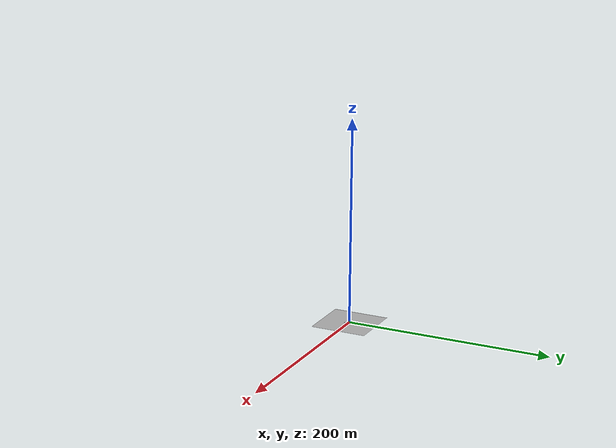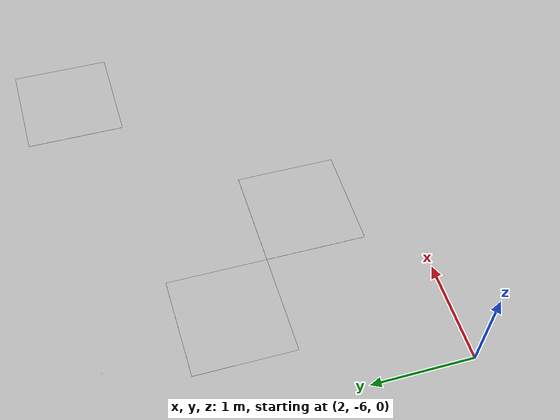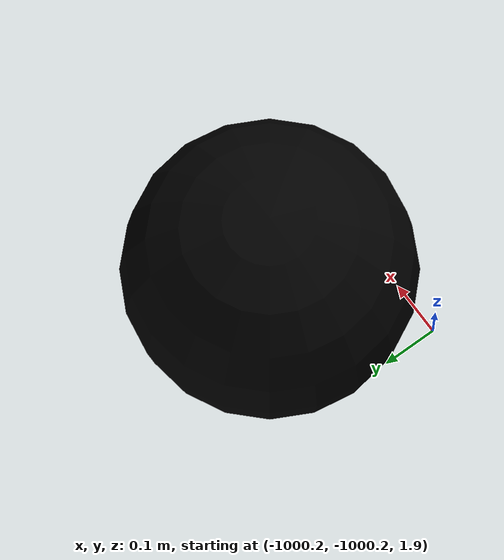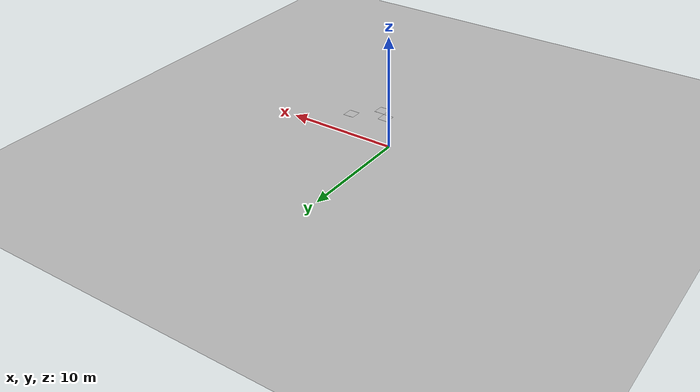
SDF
<?xml version="1.0" encoding="UTF-8"?>
<sdf version="1.9">
  <world name="cbr_edra">
    <!-- Plugins compatíveis com Gz Garden -->
    <plugin name="gz::sim::systems::Physics" filename="gz-sim-physics-system"/>
    <plugin name="gz::sim::systems::UserCommands" filename="gz-sim-user-commands-system"/>
    <plugin name="gz::sim::systems::SceneBroadcaster" filename="gz-sim-scene-broadcaster-system"/>
    <plugin name="gz::sim::systems::Contact" filename="gz-sim-contact-system"/>
    <plugin name="gz::sim::systems::Imu" filename="gz-sim-imu-system"/>
    <plugin name="gz::sim::systems::AirPressure" filename="gz-sim-air-pressure-system"/>
    <plugin name="gz::sim::systems::ApplyLinkWrench" filename="gz-sim-apply-link-wrench-system"/>
    <plugin name="gz::sim::systems::NavSat" filename="gz-sim-navsat-system"/>
    <plugin name="gz::sim::systems::Sensors" filename="gz-sim-sensors-system">
      <render_engine>ogre2</render_engine>
    </plugin>

    <!-- Coordenadas esféricas -->
    <spherical_coordinates>
      <surface_model>EARTH_WGS84</surface_model>
      <latitude_deg>37.411802</latitude_deg>
      <longitude_deg>-121.995739</longitude_deg>
      <elevation>0.0</elevation>
      <heading_deg>0</heading_deg>
    </spherical_coordinates>

    <!-- Configurações de física -->

    <physics type="ode">
      <max_step_size>0.004</max_step_size>
      <real_time_factor>1.0</real_time_factor>
      <real_time_update_rate>250</real_time_update_rate>
    </physics>

    <!-- Configurações da cena -->
    <scene>
      <shadows>false</shadows>
      <ambient>0.4 0.4 0.4 1</ambient>
      <background>0.7 0.7 0.7 1</background>
    </scene>

    <!-- Luz do sol -->
    <light type="directional" name="sun">
      <pose>250 250 600 0 0 0</pose>
      <diffuse>0.8 0.8 0.8 1</diffuse>
      <specular>0.2 0.2 0.2 1</specular>
      <attenuation>
        <range>1000</range>
        <constant>0.9</constant>
        <linear>0.01</linear>
        <quadratic>0.001</quadratic>
      </attenuation>
      <direction>0 0 -1</direction>
    </light>

    <!-- Plano de chão -->
    <model name="ground_plane">
      <static>true</static>
      <link name="link">
        <collision name="collision">
          <geometry>
            <plane>
              <normal>0 0 1</normal>
              <size>250 250</size>
            </plane>
          </geometry>
          <surface>
            <friction>
              <ode>
                <mu>1</mu>
                <mu2>1</mu2>
              </ode>
            </friction>
          </surface>
        </collision>
        <visual name="grass">
          <geometry>
            <mesh>
              <uri>file://grass_plane/meshes/grass_plane.dae</uri>
            </mesh>
          </geometry>
        </visual>
      </link>
    </model>

    <include>
      <uri>model://land_base</uri>
      <pose>4 5 0 0 0 0</pose>
      <name>land_base_1</name>
    </include>
    <include>
      <uri>model://land_base</uri>
      <pose>6 7 0 0 0 0</pose>
      <name>land_base_2</name>
    </include>
    <include>
      <uri>model://land_base</uri>
      <pose>3 6 0 0 0 0</pose>
      <name>land_base_3</name>
    </include>

    <!-- Modelo do vazio -->
    <model name="the_void">
      <static>true</static>
      <link name="link">
        <pose>0 0 0.1 0 0 0</pose>
        <visual name="the_void">
          <pose>0 0 2 0 0 0</pose>
          <geometry>
            <sphere>
              <radius>0.25</radius>
            </sphere>
          </geometry>
          <material>
            <ambient>0 0 0 1</ambient>
            <diffuse>0 0 0 1</diffuse>
            <specular>0 0 0 1</specular>
          </material>
        </visual>
      </link>
      <pose>-1000 -1000 0 0 0 0</pose>
    </model>

    <!-- Configurações da GUI -->
    <gui fullscreen="false">
      <plugin filename="MinimalScene" name="3D View">
        <gz-gui>
          <title>3D View</title>
          <property type="bool" key="showTitleBar">false</property>
          <property type="string" key="state">docked</property>
        </gz-gui>
        <engine>ogre2</engine>
        <scene>scene</scene>
        <ambient_light>0.4 0.4 0.4</ambient_light>
        <background_color>0.8 0.8 0.8</background_color>
        <camera_pose>-6 0 6 0 0.5 0</camera_pose>
        <camera_clip>
          <near>0.25</near>
          <far>25000</far>
        </camera_clip>
      </plugin>
      <plugin filename="EntityContextMenuPlugin" name="Entity context menu">
        <gz-gui>
          <property key="state" type="string">floating</property>
          <property key="width" type="double">5</property>
          <property key="height" type="double">5</property>
          <property key="showTitleBar" type="bool">false</property>
        </gz-gui>
      </plugin>
      <plugin filename="GzSceneManager" name="Scene Manager">
        <gz-gui>
          <property key="resizable" type="bool">false</property>
          <property key="width" type="double">5</property>
          <property key="height" type="double">5</property>
          <property key="state" type="string">floating</property>
          <property key="showTitleBar" type="bool">false</property>
        </gz-gui>
      </plugin>
      <plugin filename="InteractiveViewControl" name="Interactive view control">
        <gz-gui>
          <property key="resizable" type="bool">false</property>
          <property key="width" type="double">5</property>
          <property key="height" type="double">5</property>
          <property key="state" type="string">floating</property>
          <property key="showTitleBar" type="bool">false</property>
        </gz-gui>
      </plugin>
      <plugin filename="CameraTracking" name="Camera Tracking">
        <gz-gui>
          <property key="resizable" type="bool">false</property>
          <property key="width" type="double">5</property>
          <property key="height" type="double">5</property>
          <property key="state" type="string">floating</property>
          <property key="showTitleBar" type="bool">false</property>
        </gz-gui>
      </plugin>
      <plugin filename="MarkerManager" name="Marker manager">
        <gz-gui>
          <property key="resizable" type="bool">false</property>
          <property key="width" type="double">5</property>
          <property key="height" type="double">5</property>
          <property key="state" type="string">floating</property>
          <property key="showTitleBar" type="bool">false</property>
        </gz-gui>
      </plugin>
      <plugin filename="SelectEntities" name="Select Entities">
        <gz-gui>
          <anchors target="Select entities">
            <line own="right" target="right"/>
            <line own="top" target="top"/>
          </anchors>
          <property key="resizable" type="bool">false</property>
          <property key="width" type="double">5</property>
          <property key="height" type="double">5</property>
          <property key="state" type="string">floating</property>
          <property key="showTitleBar" type="bool">false</property>
        </gz-gui>
      </plugin>
      <plugin filename="VisualizationCapabilities" name="Visualization Capabilities">
        <gz-gui>
          <property key="resizable" type="bool">false</property>
          <property key="width" type="double">5</property>
          <property key="height" type="double">5</property>
          <property key="state" type="string">floating</property>
          <property key="showTitleBar" type="bool">false</property>
        </gz-gui>
      </plugin>
      <plugin filename="Spawn" name="Spawn Entities">
        <gz-gui>
          <anchors target="Select entities">
            <line own="right" target="right"/>
            <line own="top" target="top"/>
          </anchors>
          <property key="resizable" type="bool">false</property>
          <property key="width" type="double">5</property>
          <property key="height" type="double">5</property>
          <property key="state" type="string">floating</property>
          <property key="showTitleBar" type="bool">false</property>
        </gz-gui>
      </plugin>
      <plugin name="World control" filename="WorldControl">
        <gz-gui>
          <title>World control</title>
          <property type="bool" key="showTitleBar">0</property>
          <property type="bool" key="resizable">0</property>
          <property type="double" key="height">72</property>
          <property type="double" key="width">121</property>
          <property type="double" key="z">1</property>
          <property type="string" key="state">floating</property>
          <anchors target="3D View">
            <line own="left" target="left"/>
            <line own="bottom" target="bottom"/>
          </anchors>
        </gz-gui>
        <play_pause>1</play_pause>
        <step>1</step>
        <start_paused>1</start_paused>
      </plugin>
      <plugin name="World stats" filename="WorldStats">
        <gz-gui>
          <title>World stats</title>
          <property type="bool" key="showTitleBar">0</property>
          <property type="bool" key="resizable">0</property>
          <property type="double" key="height">110</property>
          <property type="double" key="width">290</property>
          <property type="double" key="z">1</property>
          <property type="string" key="state">floating</property>
          <anchors target="3D View">
            <line own="right" target="right"/>
            <line own="bottom" target="bottom"/>
          </anchors>
        </gz-gui>
        <sim_time>1</sim_time>
        <real_time>1</real_time>
        <real_time_factor>1</real_time_factor>
        <iterations>1</iterations>
      </plugin>
      <plugin name="Entity tree" filename="EntityTree"/>
    </gui>

    <gravity>0 0 -9.8</gravity>
    <magnetic_field>6e-06 2.3e-05 -4.2e-05</magnetic_field>
    <atmosphere type="adiabatic"/>
  </world>
</sdf>

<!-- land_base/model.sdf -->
<sdf version='1.9'>
  <model name='land_base'>
    <link name='link_E'>
      <inertial>
        <mass>1</mass>
        <inertia>
          <ixx>0.1</ixx>
          <ixy>0.0</ixy>
          <ixz>0.0</ixz>
          <iyy>0.1</iyy>
          <iyz>0.0</iyz>
          <izz>0.1</izz>
        </inertia>
      </inertial>
      <pose>0 0 0 0 0 0</pose>
      <visual name='visual'>
        <pose>0 -10 0 0 0 0</pose> # 0 -10 0 0 0 0
        <geometry>
          <mesh>
            <uri>model://land_base/meshes/land_base_1.obj</uri>
            <scale>1 1 1</scale>
          </mesh>
        </geometry>
        <transparency>0</transparency>
        <cast_shadows>true</cast_shadows>
      </visual>
      <collision name='collision'>
        <laser_retro>0</laser_retro>
        <max_contacts>100</max_contacts>
        <pose>0 -10 0 0 0 0</pose> # 0 -10 0 0 0 0
        <geometry>
          <mesh>
            <uri>model://land_base/meshes/land_base_1.obj</uri>
            <scale>1 1 1</scale>
          </mesh>
        </geometry>
        <surface>
          <friction>
            <ode>
              <mu>100</mu>
              <mu2>100</mu2>
              <fdir1>0 0 0</fdir1>
              <slip1>0</slip1>
              <slip2>0</slip2>
            </ode>
            <torsional>
              <coefficient>1</coefficient>
              <patch_radius>1</patch_radius>
              <surface_radius>1</surface_radius>
              <use_patch_radius>true</use_patch_radius>
              <ode>
                <slip>0</slip>
              </ode>
            </torsional>
          </friction>
          <bounce>
            <restitution_coefficient>1</restitution_coefficient>
            <threshold>1e+06</threshold>
          </bounce>
          <contact>
            <collide_without_contact>false</collide_without_contact>
            <collide_without_contact_bitmask>1</collide_without_contact_bitmask>
            <collide_bitmask>1</collide_bitmask>
            <ode>
              <soft_cfm>0</soft_cfm>
              <soft_erp>0.2</soft_erp>
              <kp>1e+13</kp>
              <kd>1</kd>
              <max_vel>0.01</max_vel>
              <min_depth>0</min_depth>
            </ode>
            <bullet>
              <split_impulse>true</split_impulse>
              <split_impulse_penetration_threshold>-0.01</split_impulse_penetration_threshold>
              <soft_cfm>0</soft_cfm>
              <soft_erp>0.2</soft_erp>
              <kp>1e+13</kp>
              <kd>1</kd>
            </bullet>
          </contact>
        </surface>
      </collision>
    </link>
    <static>true</static>
    <allow_auto_disable>true</allow_auto_disable>
  </model>
</sdf>
